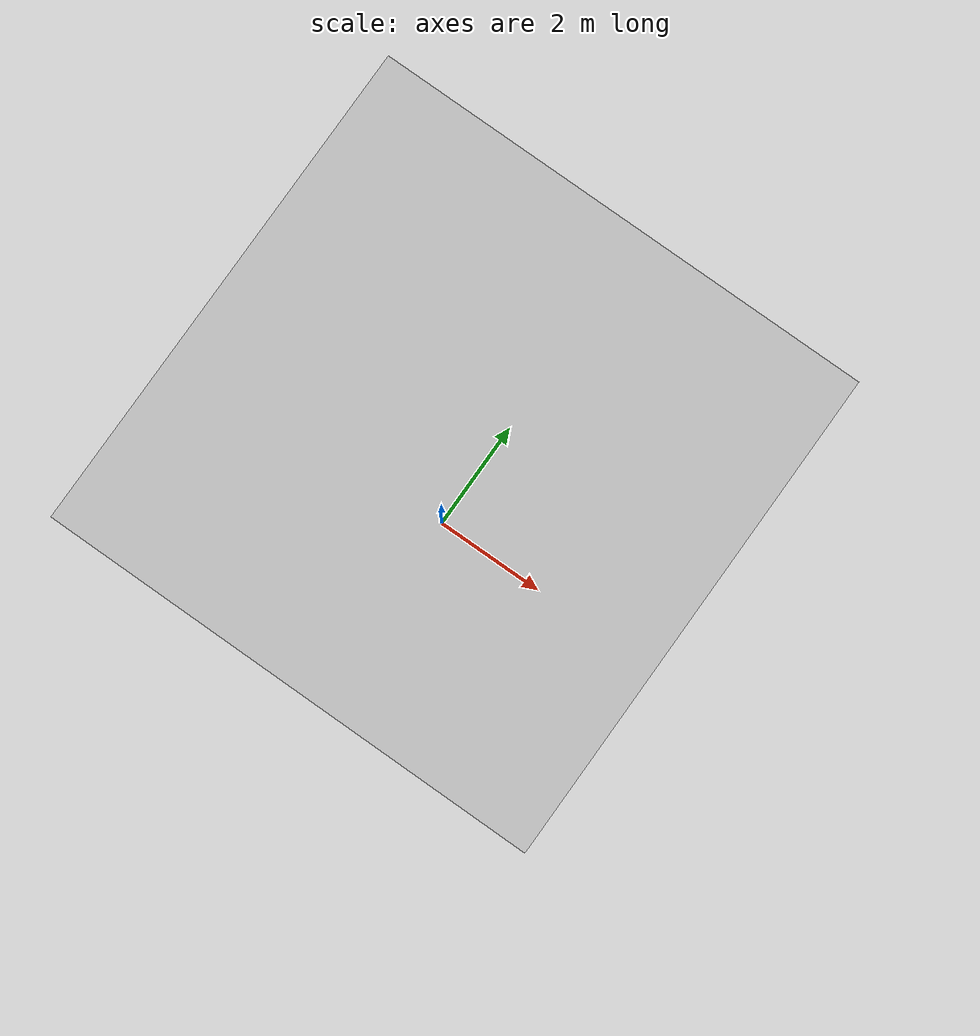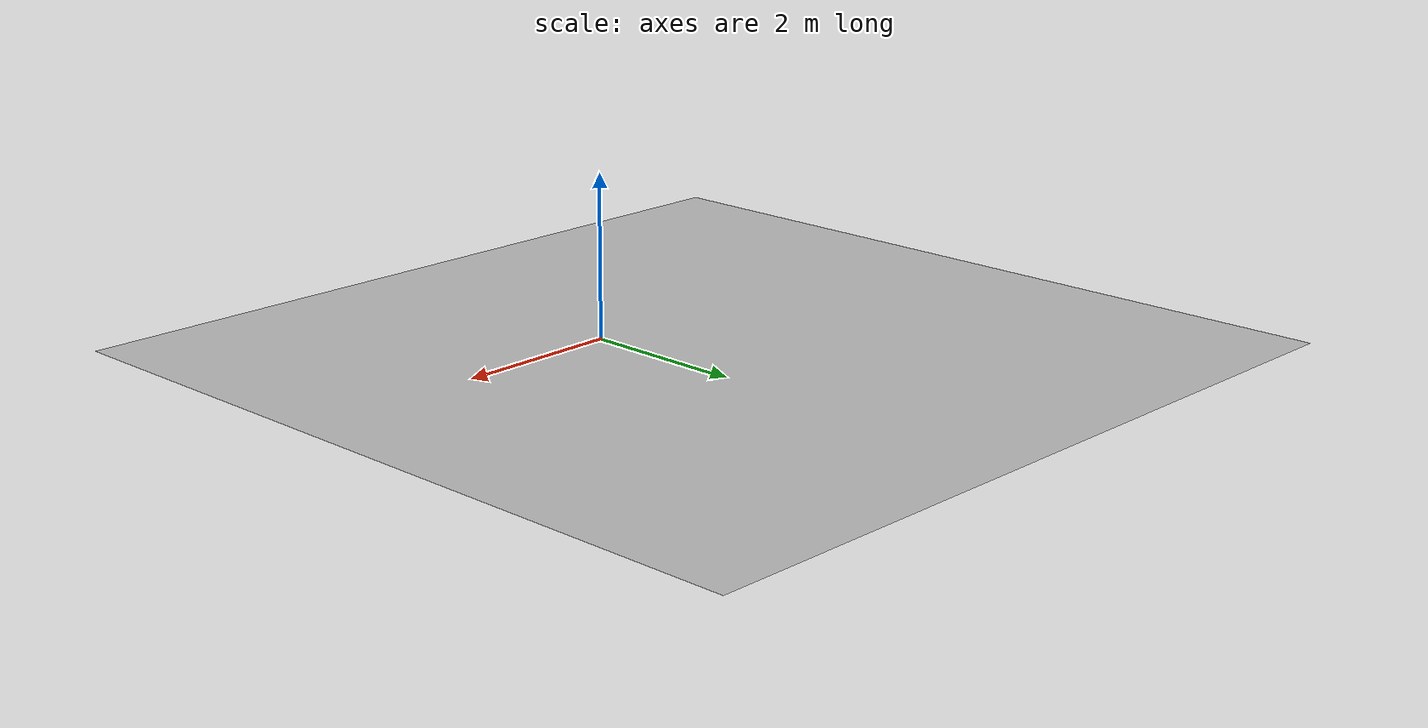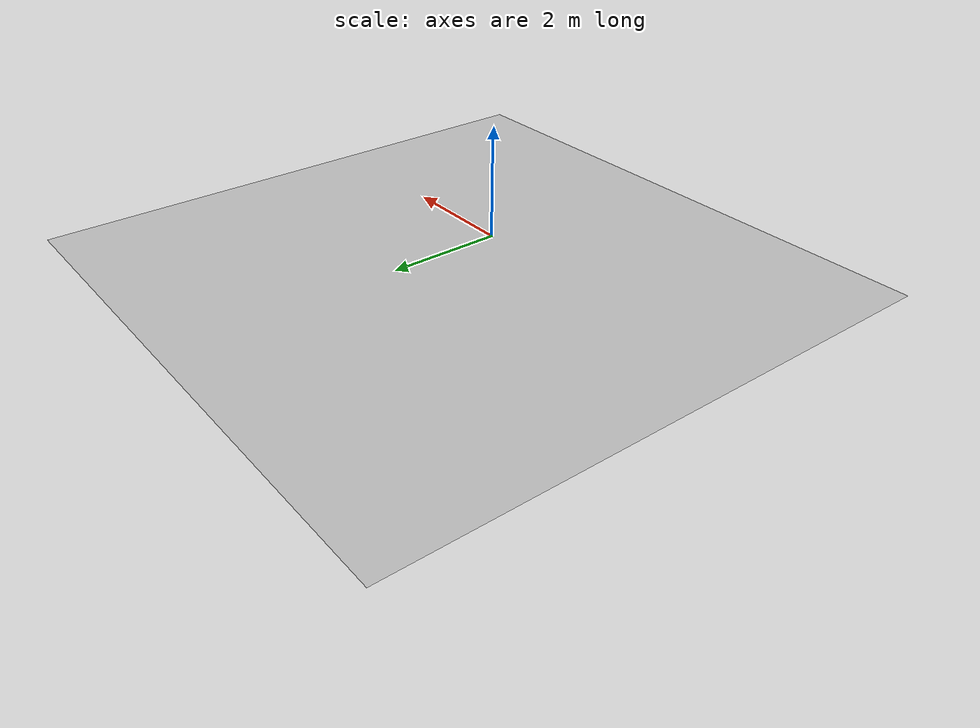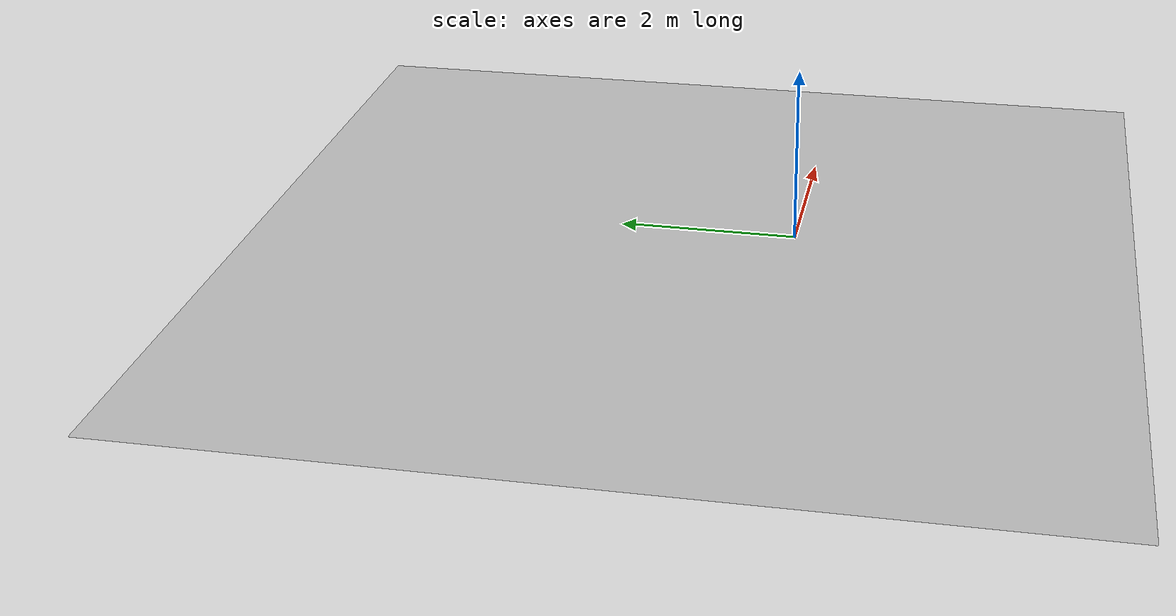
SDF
<?xml version="1.0"?>
<sdf version="1.4">
  <model name="Road_hard_curve">
    <static>true</static>
    <pose>0 0 0.0 0 0 0</pose>
    <link name="link">
      <visual name="visual">
        <pose>0 0 0.04 0 0 0</pose>
        <geometry>
          <mesh>
            <uri>model://Road_hard_curve/models/Road 09.dae</uri>
	    <scale> 0.39 0.39 1</scale>
          </mesh>
        </geometry>

      </visual>

    </link>
  </model>
</sdf>
